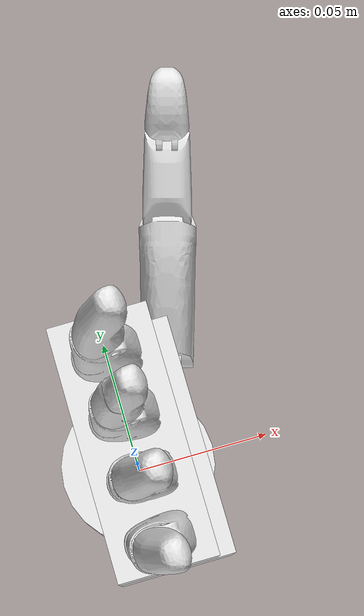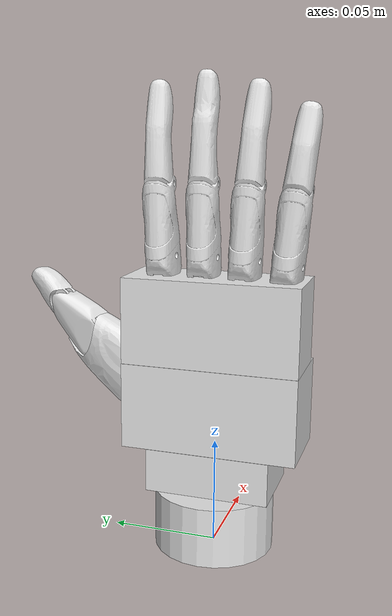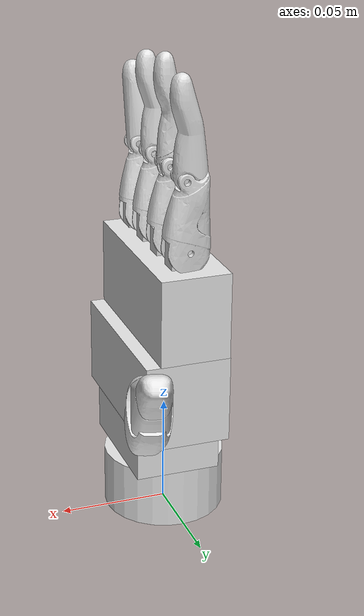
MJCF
<?xml version="1.0" ?>
<mujoco model="inspire_hand_right">
	<compiler meshdir="meshes/collision" angle="radian" autolimits="true" />
	<default>
		<default class="inspire_hand_right_visual">
			<geom contype="0" conaffinity="0"/>
		</default>
		<default class="inspire_hand_right_collision">
			<geom rgba="0.9 0.9 0.9 1.0"/>
		</default>
		<default class="inspire_hand_right_reference">
			<geom contype="0" conaffinity="0" rgba="0.9 0.9 0.0 1.0"/>
		</default>
	</default>
	<asset>
		<mesh name="right_thumb_proximal_base" file="right_thumb_proximal_base.stl" scale="1.0 1.0 1.0"/>
		<mesh name="right_thumb_proximal" file="right_thumb_proximal.stl" scale="1.0 1.0 1.0"/>
		<mesh name="right_thumb_intermediate" file="right_thumb_intermediate.stl" scale="1.0 1.0 1.0"/>
		<mesh name="right_thumb_distal" file="right_thumb_distal.stl" scale="1.0 1.0 1.0"/>
		<mesh name="right_index_proximal" file="right_index_proximal.stl" scale="1.0 1.0 1.0"/>
		<mesh name="right_index_intermediate" file="right_index_intermediate.stl" scale="1.0 1.0 1.0"/>
		<mesh name="right_middle_intermediate" file="right_middle_intermediate.stl" scale="1.0 1.0 1.0"/>
		<mesh name="right_pinky_intermediate" file="right_pinky_intermediate.stl" scale="1.0 1.0 1.0"/>
	</asset>
	<worldbody>
		<body name="inspire_hand_right" pos="0.0 0.0 0.0" quat="1.0 0.0 0.0 0.0">
			<freejoint/>
			<body name="base" pos="0.0 0.0 0.0" quat="1.0 0.0 0.0 0.0">
				<inertial mass="0.14143000543117523" pos="-0.002526399912312627 -0.06604699790477753 0.001959800021722913" quat="0.09772733598947525 0.7170524597167969 -0.06282567977905273 -0.6872685551643372" diaginertia="7.619507960043848e-05 8.411859744228423e-05 0.00012299131776671857"/>
				<body name="hand_base_link" pos="0.0 0.0 0.0" quat="9.381886343362567e-07 -9.381827226206951e-07 -0.7071045637130737 0.7071090340614319">
					<body name="base_ref" pos="0.0 -0.03 0.0" quat="0.0 1.0 1.0 0.0">
						<geom name="base_ref_1" type="box" pos="-0.008 -0.0032 0.0" quat="0.0 1.0 1.0 0.0" size="0.01954999938607216 0.010099999606609344 0.028699999675154686" class="inspire_hand_right_reference"/>
						<geom name="base_ref_2" type="box" pos="-0.0382 -0.0032 0.0" quat="0.0 1.0 1.0 0.0" size="0.01954999938607216 0.019999999552965164 0.040699999779462814" class="inspire_hand_right_reference"/>
						<geom name="base_ref_3" type="box" pos="-0.0781 0.0 0.0" quat="0.0 1.0 1.0 0.0" size="0.016100000590085983 0.019999999552965164 0.040699999779462814" class="inspire_hand_right_reference"/>
					</body>
					<geom name="SM_hand_base_link_collision_0" type="cylinder" pos="0.0 -0.01360000018030405 0.0" quat="0.7071090340614319 0.7071045637130737 0.0 0.0" size="0.02800000086426735 0.013899999670684338 0.0" class="inspire_hand_right_collision"/>
					<geom name="SM_hand_base_link_collision_1" type="box" pos="-0.0031999999191612005 -0.03799999877810478 0.0" quat="1.0 0.0 0.0 0.0" size="0.01954999938607216 0.010099999606609344 0.028699999675154686" class="inspire_hand_right_collision"/>
					<geom name="SM_hand_base_link_collision_2" type="box" pos="-0.0031999999191612005 -0.0681999996304512 0.0" quat="1.0 0.0 0.0 0.0" size="0.01954999938607216 0.019999999552965164 0.040699999779462814" class="inspire_hand_right_collision"/>
					<geom name="SM_hand_base_link_collision_3" type="box" pos="0.0 -0.10809999704360962 0.0" quat="1.0 0.0 0.0 0.0" size="0.016100000590085983 0.019999999552965164 0.040699999779462814" class="inspire_hand_right_collision"/>
					<geom name="SM_hand_base_link_collision_4" type="box" pos="-0.0015999999595806003 -0.1340000033378601 0.030899999663233757" quat="1.0 0.0 0.0 0.0" size="0.0062500000931322575 0.005549999885261059 0.004449999891221523" class="inspire_hand_right_collision"/>
					<geom name="SM_hand_base_link_collision_5" type="box" pos="-0.0015999999595806003 -0.1340000033378601 0.011800000444054604" quat="1.0 0.0 0.0 0.0" size="0.0062500000931322575 0.005549999885261059 0.004449999891221523" class="inspire_hand_right_collision"/>
					<geom name="SM_hand_base_link_collision_6" type="box" pos="-0.0015999999595806003 -0.1340000033378601 -0.007000000216066837" quat="1.0 0.0 0.0 0.0" size="0.0062500000931322575 0.005549999885261059 0.004449999891221523" class="inspire_hand_right_collision"/>
					<geom name="SM_hand_base_link_collision_7" type="box" pos="-0.0015999999595806003 -0.1340000033378601 -0.026200000196695328" quat="1.0 0.0 0.0 0.0" size="0.0062500000931322575 0.005549999885261059 0.004449999891221523" class="inspire_hand_right_collision"/>
					<body name="index_proximal" pos="0.0002853299956768751 -0.13652999699115753 -0.03226799890398979" quat="-0.017445441335439682 0.9998478293418884 4.842071804592604e-19 8.341038073185411e-21">
						<inertial mass="0.004240300040692091" pos="0.0012259000213816762 0.0119420001283288 -0.006000100169330835" quat="-0.694649338722229 1.8907079720520414e-05 -2.7051870347349904e-05 0.7193485498428345" diaginertia="2.1090872337481414e-07 6.628712867495778e-07 6.939799845895323e-07"/>
						<geom name="SM_index_proximal_collision_0" type="mesh" pos="0.0 0.0 0.0" quat="1.0 0.0 0.0 0.0" mesh="right_index_proximal" class="inspire_hand_right_collision"/>
						<joint name="index_proximal_joint" type="hinge" pos="1.4693679385278594e-39 6.938893903907228e-18 -4.3900958189883325e-23" range="0.0 1.46999990940094" axis="0.0 0.0 1.0"/>
						<body name="index_intermediate" pos="-0.00261380011215806 0.03202600032091141 -0.0010000000474974513" quat="1.0 9.244463733058732e-33 -1.6162664417396406e-24 -3.280516531330707e-24">
							<inertial mass="0.00456830020993948" pos="0.0019696999806910753 0.019588999450206757 -0.004999999888241291" quat="0.7511630654335022 9.442229384148959e-06 -9.285805390391033e-06 -0.6601166725158691" diaginertia="8.472122203784238e-08 7.724647730356082e-07 7.817899927431426e-07"/>
							<geom name="SM_index_intermediate_collision_0" type="mesh" pos="0.0 0.0 0.0" quat="1.0 0.0 0.0 0.0" mesh="right_index_intermediate" class="inspire_hand_right_collision"/>
							<joint name="index_intermediate_joint" type="hinge" pos="4.336808689942018e-19 -2.6005007495018653e-18 9.079053624025337e-20" range="-0.04544999822974205 1.5600000619888306" axis="0.0 0.0 1.0"/>
							<body name="index_tip" pos="-0.0007999999797903001 0.04500000178813934 -0.004999999888241291" quat="1.0 9.244463733058732e-33 -1.6162664417396406e-24 -3.280516531330707e-24">
								<body name="index_tip_ref" quat="0 -1 1 0"/>
							</body>
						</body>
					</body>
					<body name="middle_proximal" pos="0.0002853299956768751 -0.1370999962091446 -0.01295000035315752" quat="3.6732051285071066e-06 1.0 3.029189524120985e-28 4.6160661823683426e-29">
						<inertial mass="0.004240300040692091" pos="0.0012969999806955457 0.011934000067412853 -0.006000100169330835" quat="-0.6925021409988403 1.813349263102282e-05 -2.875800601032097e-05 0.7214158177375793" diaginertia="2.1091464930123038e-07 6.628653181905975e-07 6.939699801478127e-07"/>
						<geom name="SM_middle_proximal_collision_0" type="mesh" pos="0.0 0.0 0.0" quat="1.0 0.0 0.0 0.0" mesh="right_index_proximal" class="inspire_hand_right_collision"/>
						<joint name="middle_proximal_joint" type="hinge" pos="0.0 0.0 0.0" range="0.0 1.46999990940094" axis="0.0 0.0 1.0"/>
						<body name="middle_intermediate" pos="-0.002422899939119816 0.032040998339653015 -0.0010000000474974513" quat="1.0 0.0 4.616546461148224e-29 -1.0097417179416521e-28">
							<inertial mass="0.0050396001897752285" pos="0.0019209999591112137 0.020795999094843864 -0.004999999888241291" quat="0.7518888115882874 5.767871698481031e-05 -5.518809120985679e-05 -0.6592898964881897" diaginertia="9.140141088437304e-08 9.732785883898032e-07 9.838399819273036e-07"/>
							<geom name="SM_middle_intermediate_collision_0" type="mesh" pos="0.0 0.0 0.0" quat="1.0 0.0 0.0 0.0" mesh="right_middle_intermediate" class="inspire_hand_right_collision"/>
							<joint name="middle_intermediate_joint" type="hinge" pos="3.682595503176919e-23 2.6020711518947972e-18 1.3877791116536907e-17" range="-0.04544999822974205 1.5600000619888306" axis="0.0 0.0 1.0"/>
							<body name="middle_tip" pos="-0.0010000000474974513 0.04800000041723251 -0.004999999888241291" quat="1.0 0.0 4.616546461148224e-29 -1.0097417179416521e-28">
								<body name="middle_tip_ref" quat="0 -1 1 0"/>
							</body>
						</body>
					</body>
					<body name="ring_proximal" pos="0.0002853299956768751 -0.13691000640392303 0.0062871999107301235" quat="0.02619333006441593 0.9996569156646729 1.666354671878583e-24 1.082144874741528e-22">
						<inertial mass="0.004240300040692091" pos="0.0012969999806955457 0.011934000067412853 -0.006000199820846319" quat="-0.6925021409988403 1.5668043488403782e-05 -2.6212075681542046e-05 0.7214158177375793" diaginertia="2.1091464930123038e-07 6.628653181905975e-07 6.939699801478127e-07"/>
						<geom name="SM_ring_proximal_collision_0" type="mesh" pos="0.0 0.0 0.0" quat="1.0 0.0 0.0 0.0" mesh="right_index_proximal" class="inspire_hand_right_collision"/>
						<joint name="ring_proximal_joint" type="hinge" pos="0.0 0.0 0.0" range="0.0 1.46999990940094" axis="0.0 0.0 1.0"/>
						<body name="ring_intermediate" pos="-0.002422899939119816 0.032040998339653015 -0.0010000000474974513" quat="1.0 -1.734723475976807e-18 1.0830465743106318e-22 6.354698604291806e-26">
							<inertial mass="0.00456830020993948" pos="0.0021752999164164066 0.01956699974834919 -0.004999999888241291" quat="0.7476879954338074 2.1428197214845568e-05 -1.9659373720060103e-05 -0.6640501618385315" diaginertia="8.472197521314229e-08 7.724480042270443e-07 7.817699838597036e-07"/>
							<geom name="SM_ring_intermediate_collision_0" type="mesh" pos="0.0 0.0 0.0" quat="1.0 0.0 0.0 0.0" mesh="right_index_intermediate" class="inspire_hand_right_collision"/>
							<joint name="ring_intermediate_joint" type="hinge" pos="4.337176785314604e-19 1.394980649464154e-19 1.3904164943187548e-17" range="-0.04544999822974205 1.5600000619888306" axis="0.0 0.0 1.0"/>
							<body name="ring_tip" pos="-0.0007999999797903001 0.04500000178813934 -0.004999999888241291" quat="1.0 -1.734723475976807e-18 1.0830465743106318e-22 6.354698604291806e-26">
								<body name="ring_tip_ref" quat="0 -1 1 0"/>
							</body>
						</body>
					</body>
					<body name="pinky_proximal" pos="0.0002853299956768751 -0.1357100009918213 0.025488000363111496" quat="0.052322424948215485 0.9986302256584167 5.331118043334088e-19 4.5107813163741705e-18">
						<inertial mass="0.004240300040692091" pos="0.0012969999806955457 0.011934000067412853 -0.006000100169330835" quat="-0.6925021409988403 1.683872687863186e-05 -2.779311398626305e-05 0.7214158177375793" diaginertia="2.1091464930123038e-07 6.628653181905975e-07 6.939699801478127e-07"/>
						<geom name="SM_pinky_proximal_collision_0" type="mesh" pos="0.0 0.0 0.0" quat="1.0 0.0 0.0 0.0" mesh="right_index_proximal" class="inspire_hand_right_collision"/>
						<joint name="pinky_proximal_joint" type="hinge" pos="-5.4136457238015324e-20 -3.469622727833782e-18 -2.7755554108932987e-17" range="0.0 1.46999990940094" axis="0.0 0.0 1.0"/>
						<body name="pinky_intermediate" pos="-0.002422899939119816 0.032040998339653015 -0.0010000000474974513" quat="1.0 -1.0408340855860843e-17 7.186291710318188e-24 1.352471256426121e-23">
							<inertial mass="0.0035995999351143837" pos="0.0024747999850660563 0.016202999278903008 -0.005003099795430899" quat="0.7450506687164307 -0.0033152850810438395 0.0028730568010360003 -0.6669934988021851" diaginertia="6.565379351286538e-08 4.437228255937953e-07 4.486703915063117e-07"/>
							<geom name="SM_pinky_intermediate_collision_0" type="mesh" pos="0.0 0.0 0.0" quat="1.0 0.0 0.0 0.0" mesh="right_pinky_intermediate" class="inspire_hand_right_collision"/>
							<joint name="pinky_intermediate_joint" type="hinge" pos="-3.682595503176919e-23 2.312775692797492e-18 -1.3711177088834026e-17" range="-0.04544999822974205 1.5600000619888306" axis="0.0 0.0 1.0"/>
							<body name="pinky_tip" pos="-0.0007999999797903001 0.03700000047683716 -0.004999999888241291" quat="1.0 -1.0408340855860843e-17 7.186291710318188e-24 1.352471256426121e-23">
								<body name="pinky_tip_ref" quat="0 -1 1 0"/>
							</body>
						</body>
					</body>
					<body name="thumb_proximal_base" pos="-0.01696000061929226 -0.06909999996423721 -0.02044999971985817" quat="0.49999815225601196 0.5 -0.5 0.500001847743988">
						<inertial mass="0.0018869000487029552" pos="-0.0048063998110592365 0.0009381999843753874 -0.007569999899715185" quat="0.6526864767074585 0.7102533578872681 -0.0756545141339302 -0.2526201903820038" diaginertia="4.941936637692379e-08 6.873204227986207e-08 8.660258998816062e-08"/>
						<geom name="SM_thumb_proximal_base_collision_0" type="mesh" pos="0.0 0.0 0.0" quat="1.0 0.0 0.0 0.0" mesh="right_thumb_proximal_base" class="inspire_hand_right_collision"/>
						<joint name="thumb_proximal_yaw_joint" type="hinge" pos="3.469446951953614e-18 5.824756644121128e-29 9.206488757942298e-24" range="0.0 1.3079999685287476" axis="0.0 0.0 -1.0"/>
						<body name="thumb_proximal" pos="-0.008809899911284447 0.010892000049352646 -0.00925000011920929" quat="0.09968429803848267 0.09968466311693192 0.7000463008880615 0.7000437378883362">
							<inertial mass="0.006607499904930592" pos="0.021932000294327736 0.012784999795258045 -0.008038599975407124" quat="0.933698296546936 0.0018248790875077248 0.0006946377689018846 0.3580555021762848" diaginertia="8.645660045658587e-07 2.439328682157793e-06 2.786005325106089e-06"/>
							<geom name="SM_thumb_proximal_collision_0" type="mesh" pos="0.0 0.0 0.0" quat="1.0 0.0 0.0 0.0" mesh="right_thumb_proximal" class="inspire_hand_right_collision"/>
							<joint name="thumb_proximal_pitch_joint" type="hinge" pos="1.734739812793905e-18 5.20417497742379e-18 1.7346933872820255e-18" range="0.0 0.6000000238418579" axis="0.0 0.0 1.0"/>
							<body name="thumb_intermediate" pos="0.04407000169157982 0.03455299884080887 -0.0007999999797903001" quat="1.0 1.2037062152420224e-35 2.212510229155447e-22 -4.235164736271502e-22">
								<inertial mass="0.0037847000639885664" pos="0.009554400108754635 -0.0016282000578939915 -0.007199699990451336" quat="-0.4348262548446655 -5.981473077554256e-05 0.00011290622205706313 0.9005143642425537" diaginertia="2.456612264722935e-07 4.4808876964452793e-07 4.6530999497917946e-07"/>
								<geom name="SM_thumb_intermediate_collision_0" type="mesh" pos="0.0 0.0 0.0" quat="1.0 0.0 0.0 0.0" mesh="right_thumb_intermediate" class="inspire_hand_right_collision"/>
								<joint name="thumb_intermediate_joint" type="hinge" pos="-1.3326153465012031e-17 -4.878983395259287e-18 3.873747606360851e-18" range="0.0 0.800000011920929" axis="0.0 0.0 1.0"/>
								<body name="thumb_distal" pos="0.02024799957871437 0.010156000033020973 -0.0012000000569969416" quat="1.0 1.2037062152420224e-35 2.212510229155447e-22 -4.235164736271502e-22">
									<inertial mass="0.0033440999686717987" pos="0.009288799948990345 0.0049529001116752625 -0.006003300193697214" quat="0.9273728132247925 0.00246614683419466 0.00030418275855481625 0.3741303086280823" diaginertia="8.159298658938496e-08 1.9524669880865986e-07 2.0026031677389255e-07"/>
									<geom name="SM_thumb_distal_collision_0" type="mesh" pos="0.0 0.0 0.0" quat="1.0 0.0 0.0 0.0" mesh="right_thumb_distal" class="inspire_hand_right_collision"/>
									<joint name="thumb_distal_joint" type="hinge" pos="1.7897268508085207e-17 -2.167591898513117e-19 5.636657675300709e-18" range="0.0 0.4000000059604645" axis="0.0 0.0 1.0"/>
									<body name="thumb_tip" pos="0.02019999921321869 0.014000000432133675 -0.006000000052154064" quat="1.0 1.2037062152420224e-35 2.212510229155447e-22 -4.235164736271502e-22">
										<body name="thumb_tip_ref" quat="0 -1 1 0"/>
									</body>
								</body>
							</body>
						</body>
					</body>
				</body>
			</body>

		</body>
	</worldbody>
	<equality>
		<joint name="index_intermediate_joint_index_proximal_joint" joint1="index_intermediate_joint" joint2="index_proximal_joint" polycoef="-0.04544999822974205 1.0639899969100952 0.0 0.0 0.0"/>
		<joint name="middle_intermediate_joint_middle_proximal_joint" joint1="middle_intermediate_joint" joint2="middle_proximal_joint" polycoef="-0.04544999822974205 1.0639899969100952 0.0 0.0 0.0"/>
		<joint name="ring_intermediate_joint_ring_proximal_joint" joint1="ring_intermediate_joint" joint2="ring_proximal_joint" polycoef="-0.04544999822974205 1.0639899969100952 0.0 0.0 0.0"/>
		<joint name="pinky_intermediate_joint_pinky_proximal_joint" joint1="pinky_intermediate_joint" joint2="pinky_proximal_joint" polycoef="-0.04544999822974205 1.0639899969100952 0.0 0.0 0.0"/>
		<joint name="thumb_intermediate_joint_thumb_proximal_pitch_joint" joint1="thumb_intermediate_joint" joint2="thumb_proximal_pitch_joint" polycoef="0.0 1.3339999914169312 0.0 0.0 0.0"/>
		<joint name="thumb_distal_joint_thumb_proximal_pitch_joint" joint1="thumb_distal_joint" joint2="thumb_proximal_pitch_joint" polycoef="0.0 0.6669999957084656 0.0 0.0 0.0"/>
	</equality>
	<contact>
		<exclude name="hand_base_link_thumb_proximal_base" body1="hand_base_link" body2="thumb_proximal_base"/>
		<exclude name="hand_base_link_thumb_proximal" body1="hand_base_link" body2="thumb_proximal"/>
		<exclude name="hand_base_link_index_proximal" body1="hand_base_link" body2="index_proximal"/>
		<exclude name="hand_base_link_middle_proximal" body1="hand_base_link" body2="middle_proximal"/>
		<exclude name="hand_base_link_ring_proximal" body1="hand_base_link" body2="ring_proximal"/>
		<exclude name="hand_base_link_pinky_proximal" body1="hand_base_link" body2="pinky_proximal"/>
	</contact>
</mujoco>
